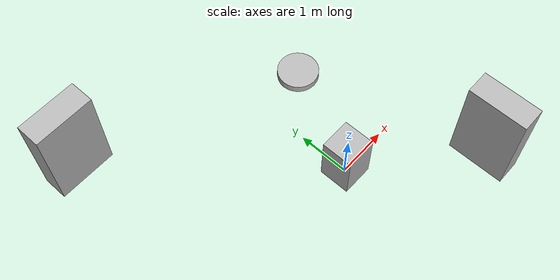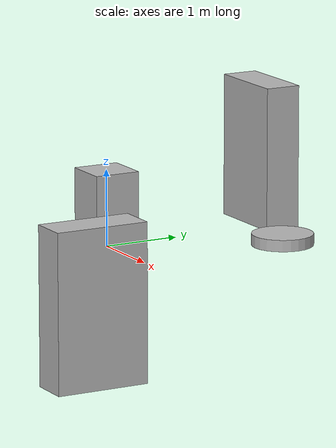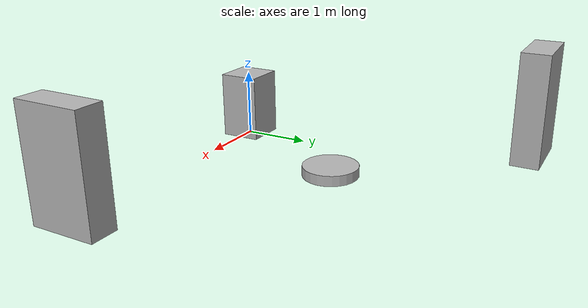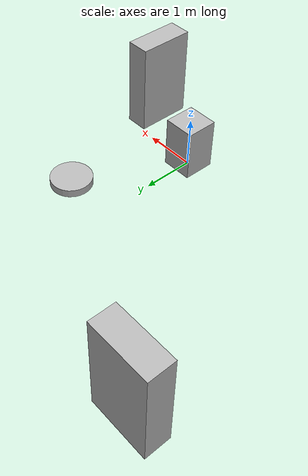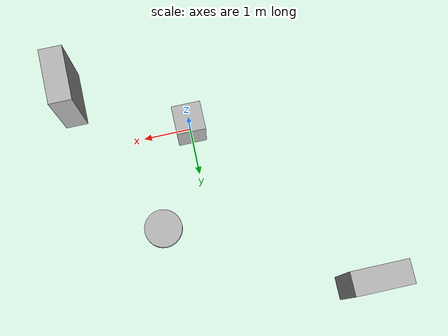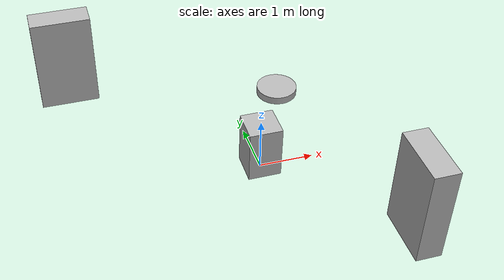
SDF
<?xml version="1.0" ?>
<sdf version="1.6">
  <world name="mini_warehouse">
    <gravity>0 0 -9.8</gravity>
    <physics name="default_physics" type="ode">
      <max_step_size>0.001</max_step_size>
    </physics>
    <light name="sun" type="directional"/>
    <scene>
      <shadows>1</shadows>
    </scene>

    <model name='shelf_001'>
      <include>
        <uri>model://shelf</uri>
      </include>
      <pose frame="">2.5 -1.5 0 0 0 1.5707963267948966</pose>
    </model>

    <model name="shelf_002">
      <include>
        <uri>model://shelf</uri>
        <pose>0 0 0.25 0 0 0</pose>
      </include>
      <pose frame="">-3 4 0 0 0 0</pose>
    </model>

    <include>
      <uri>model://pallet</uri>
      <name>pallet_canonical</name>
      <pose>1 2 0.075 0 0 0</pose>
    </include>

    <model name="inline_crate">
      <static>1</static>
      <pose frame="">0 0 0.5 0 0 0</pose>
      <link name="link">
        <visual name="visual">
          <geometry>
            <box>
              <size>0.6 0.6 1.0</size>
            </box>
          </geometry>
        </visual>
      </link>
    </model>

  </world>
</sdf>

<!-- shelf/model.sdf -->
<sdf version="1.6">
  <model name="shelf">
    <static>1</static>
    <link name="link">
      <inertial>
        <mass>40.0</mass>
        <inertia>
          <ixx>1.0</ixx>
          <ixy>0.0</ixy>
          <ixz>0.0</ixz>
          <iyy>2.0</iyy>
          <iyz>0.0</iyz>
          <izz>3.0</izz>
        </inertia>
      </inertial>
      <visual name="visual">
        <geometry>
          <box>
            <size>1.2 0.5 2.0</size>
          </box>
        </geometry>
      </visual>
      <collision name="collision">
        <geometry>
          <box>
            <size>1.2 0.5 2.0</size>
          </box>
        </geometry>
      </collision>
    </link>
  </model>
</sdf>

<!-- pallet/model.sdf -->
<sdf version="1.6">
  <model name="pallet">
    <link name="link">
      <visual name="visual">
        <geometry>
          <cylinder>
            <radius>0.4</radius>
            <length>0.15</length>
          </cylinder>
        </geometry>
      </visual>
    </link>
  </model>
</sdf>
